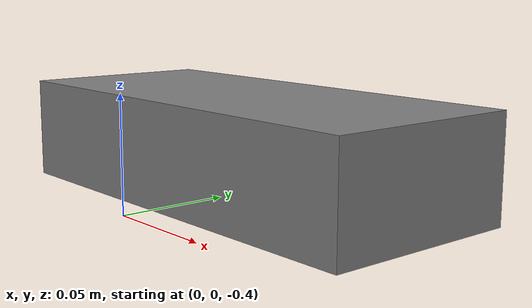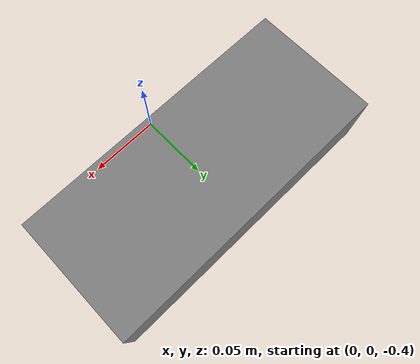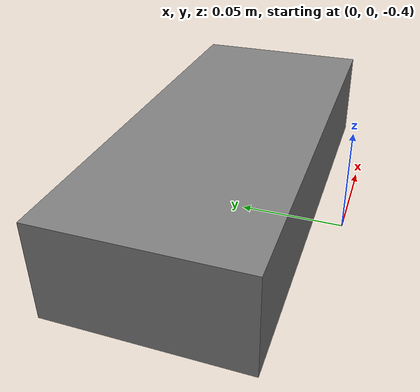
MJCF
<mujoco model="mesh_to_primitive">
<asset>
    <!-- Original mesh, if you still want it for visuals -->
    <mesh name="geom0_vismesh" file="left_foot_v10_1.stl" scale="0.001 0.001 0.001"/>
  </asset>
  <worldbody>
    <body name="body0" pos="0.00477145 0.05925 -0.37720955">
      <geom name="geom0" type="box" size="0.10247221 0.045 0.02306868"/>
    </body>
  </worldbody>
</mujoco>
